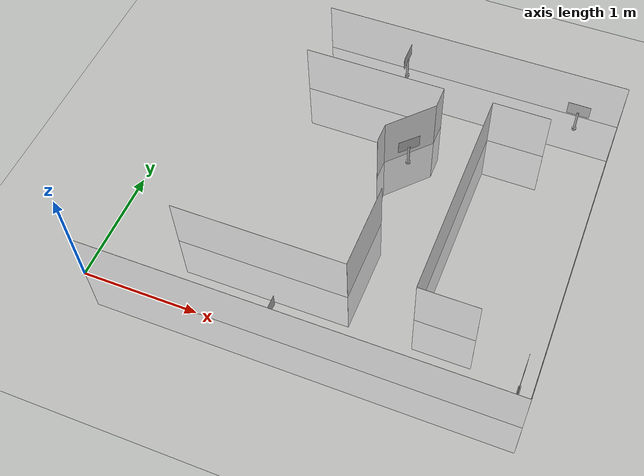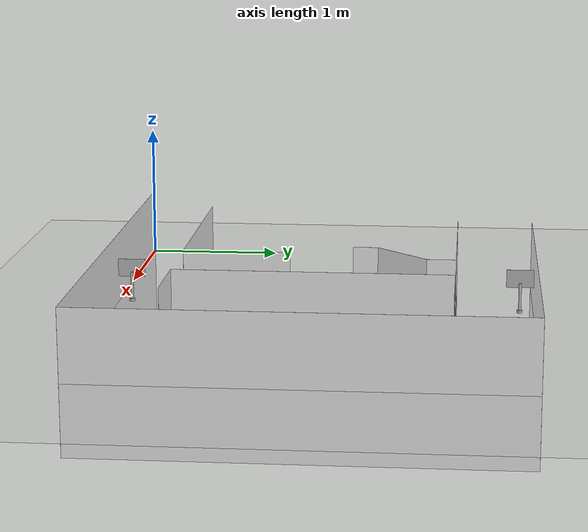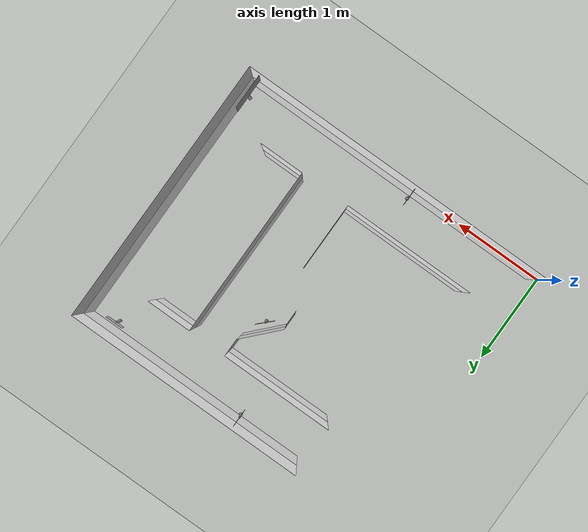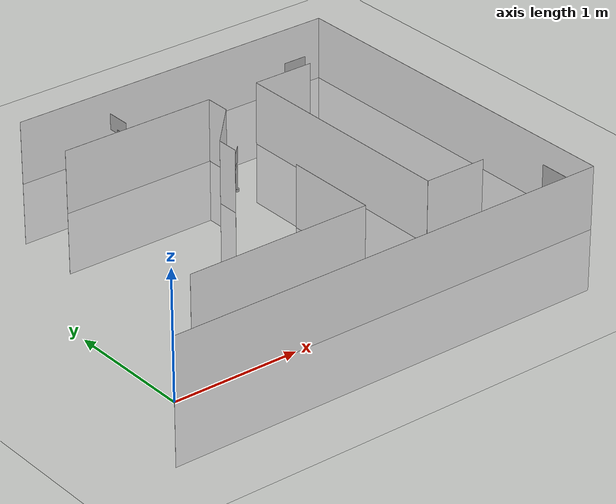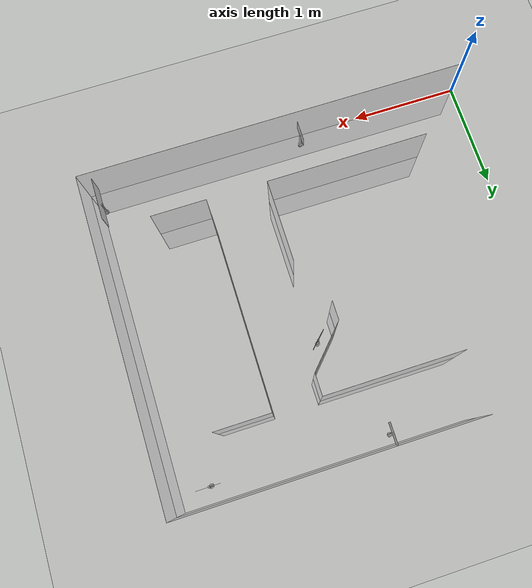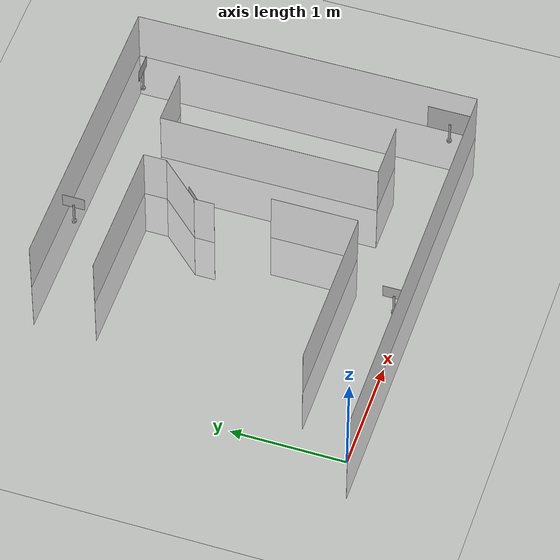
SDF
<sdf version="1.6">
 <world name="default">
  <model name="ground_plane">
   <static>1</static>
   <link name="link">
    <collision name="collision">
     <geometry><plane><normal>0 0 1</normal><size>100 100</size></plane></geometry>
     <surface><friction><ode><mu>100</mu><mu2>50</mu2></ode></friction></surface>
    </collision>
    <visual name="visual">
     <cast_shadows>0</cast_shadows>
     <geometry><plane><normal>0 0 1</normal><size>100 100</size></plane></geometry>
     <material>
      <script><uri>file://media/materials/scripts/gazebo.material</uri><name>Gazebo/Grey</name></script>
     </material>
    </visual>
   </link>
  </model>
  <model name="wall_6">
   <static>1</static>
   <link name="link">
    <collision name="collision"><geometry><box><size>2.74320548641 0.001 1</size></box></geometry></collision>
    <visual name="visual">
     <geometry><box><size>2.74320548641 0.001 1</size></box></geometry>
     <material>
      <script><name>Gazebo/White</name><uri>file://media/materials/scripts/gazebo.material</uri></script>
     </material>
    </visual>
   </link>
   <pose>2.28600457201 3.04800609601 0 0 0 0.0</pose>
  </model>
  <model name="wall_7">
   <static>1</static>
   <link name="link">
    <collision name="collision"><geometry><box><size>3.04800609601 0.001 1</size></box></geometry></collision>
    <visual name="visual">
     <geometry><box><size>3.04800609601 0.001 1</size></box></geometry>
     <material>
      <script><name>Gazebo/White</name><uri>file://media/materials/scripts/gazebo.material</uri></script>
     </material>
    </visual>
   </link>
   <pose>3.65760731521 1.52400304801 0 0 0 -1.57079632679</pose>
  </model>
  <model name="wall_8">
   <static>1</static>
   <link name="link">
    <collision name="collision"><geometry><box><size>3.65760731521 0.001 1</size></box></geometry></collision>
    <visual name="visual">
     <geometry><box><size>3.65760731521 0.001 1</size></box></geometry>
     <material>
      <script><name>Gazebo/White</name><uri>file://media/materials/scripts/gazebo.material</uri></script>
     </material>
    </visual>
   </link>
   <pose>1.82880365761 0.0 0 0 0 3.14159265359</pose>
  </model>
  <model name="wall_11">
   <static>1</static>
   <link name="link">
    <collision name="collision"><geometry><box><size>0.762001524003 0.001 1</size></box></geometry></collision>
    <visual name="visual">
     <geometry><box><size>0.762001524003 0.001 1</size></box></geometry>
     <material>
      <script><name>Gazebo/White</name><uri>file://media/materials/scripts/gazebo.material</uri></script>
     </material>
    </visual>
   </link>
   <pose>2.05740411481 0.939801879604 0 0 0 -1.57079632679</pose>
  </model>
  <model name="wall_12">
   <static>1</static>
   <link name="link">
    <collision name="collision"><geometry><box><size>1.49860299721 0.001 1</size></box></geometry></collision>
    <visual name="visual">
     <geometry><box><size>1.49860299721 0.001 1</size></box></geometry>
     <material>
      <script><name>Gazebo/White</name><uri>file://media/materials/scripts/gazebo.material</uri></script>
     </material>
    </visual>
   </link>
   <pose>1.30810261621 0.558801117602 0 0 0 3.14159265359</pose>
  </model>
  <model name="wall_19">
   <static>1</static>
   <link name="link">
    <collision name="collision"><geometry><box><size>1.27000254001 0.001 1</size></box></geometry></collision>
    <visual name="visual">
     <geometry><box><size>1.27000254001 0.001 1</size></box></geometry>
     <material>
      <script><name>Gazebo/White</name><uri>file://media/materials/scripts/gazebo.material</uri></script>
     </material>
    </visual>
   </link>
   <pose>1.54940309881 2.48920497841 0 0 0 0.0</pose>
  </model>
  <model name="wall_20">
   <static>1</static>
   <link name="link">
    <collision name="collision"><geometry><box><size>0.203200406401 0.001 1</size></box></geometry></collision>
    <visual name="visual">
     <geometry><box><size>0.203200406401 0.001 1</size></box></geometry>
     <material>
      <script><name>Gazebo/White</name><uri>file://media/materials/scripts/gazebo.material</uri></script>
     </material>
    </visual>
   </link>
   <pose>2.18440436881 2.38760477521 0 0 0 -1.57079632679</pose>
  </model>
  <model name="wall_21">
   <static>1</static>
   <link name="link">
    <collision name="collision"><geometry><box><size>0.485267289168 0.001 1</size></box></geometry></collision>
    <visual name="visual">
     <geometry><box><size>0.485267289168 0.001 1</size></box></geometry>
     <material>
      <script><name>Gazebo/White</name><uri>file://media/materials/scripts/gazebo.material</uri></script>
     </material>
    </visual>
   </link>
   <pose>2.01930403861 2.10820421641 0 0 0 -2.31917437432</pose>
  </model>
  <model name="wall_22">
   <static>1</static>
   <link name="link">
    <collision name="collision"><geometry><box><size>0.177800355601 0.001 1</size></box></geometry></collision>
    <visual name="visual">
     <geometry><box><size>0.177800355601 0.001 1</size></box></geometry>
     <material>
      <script><name>Gazebo/White</name><uri>file://media/materials/scripts/gazebo.material</uri></script>
     </material>
    </visual>
   </link>
   <pose>1.85420370841 1.84150368301 0 0 0 -1.57079632679</pose>
  </model>
  <model name="wall_24">
   <static>1</static>
   <link name="link">
    <collision name="collision"><geometry><box><size>0.508001016002 0.001 1</size></box></geometry></collision>
    <visual name="visual">
     <geometry><box><size>0.508001016002 0.001 1</size></box></geometry>
     <material>
      <script><name>Gazebo/White</name><uri>file://media/materials/scripts/gazebo.material</uri></script>
     </material>
    </visual>
   </link>
   <pose>2.87020574041 2.48920497841 0 0 0 0.0</pose>
  </model>
  <model name="wall_25">
   <static>1</static>
   <link name="link">
    <collision name="collision"><geometry><box><size>0.508001016002 0.001 1</size></box></geometry></collision>
    <visual name="visual">
     <geometry><box><size>0.508001016002 0.001 1</size></box></geometry>
     <material>
      <script><name>Gazebo/White</name><uri>file://media/materials/scripts/gazebo.material</uri></script>
     </material>
    </visual>
   </link>
   <pose>2.87020574041 0.558801117602 0 0 0 3.14159265359</pose>
  </model>
  <model name="wall_26">
   <static>1</static>
   <link name="link">
    <collision name="collision"><geometry><box><size>1.93040386081 0.001 1</size></box></geometry></collision>
    <visual name="visual">
     <geometry><box><size>1.93040386081 0.001 1</size></box></geometry>
     <material>
      <script><name>Gazebo/White</name><uri>file://media/materials/scripts/gazebo.material</uri></script>
     </material>
    </visual>
   </link>
   <pose>2.61620523241 1.52400304801 0 0 0 1.57079632679</pose>
  </model>
  <model name="Vendor1">
   <link name="plate">
    <pose>0 0 0.2425 0 0 0</pose>
    <collision name="collision">
     <geometry><box><size>0.001 0.1 0.065</size></box></geometry>
     <surface><friction><ode><mu>1</mu><mu2>1</mu2></ode></friction></surface>
    </collision>
    <visual name="visual">
     <geometry><box><size>0.001 0.2 0.13</size></box></geometry>
     <material>
      <script>
       <uri>model://vendor1/materials/scripts</uri>
       <uri>model://vendor1/materials/textures</uri>
       <name>Vendor1/Diffuse</name>
      </script>
     </material>
    </visual>
    <inertial>
     <inertia><ixx>0.1</ixx><ixy>0</ixy><ixz>0</ixz><iyy>0.1</iyy><iyz>0</iyz><izz>0.1</izz></inertia>
     <mass>0.1</mass>
    </inertial>
   </link>
   <link name="pole">
    <pose>0 0 0.11 0 0 0</pose>
    <collision name="collision">
     <geometry><cylinder><radius>0.01</radius><length>0.2</length></cylinder></geometry>
     <surface>
      <friction><torsional><coefficient>1</coefficient></torsional><ode><mu>1</mu><mu2>1</mu2></ode></friction>
     </surface>
    </collision>
    <visual name="visual">
     <geometry><cylinder><radius>0.01</radius><length>0.2</length></cylinder></geometry>
    </visual>
    <inertial>
     <inertia><ixx>1</ixx><ixy>0</ixy><ixz>0</ixz><iyy>1</iyy><iyz>0</iyz><izz>1</izz></inertia>
     <mass>1</mass>
    </inertial>
   </link>
   <link name="base">
    <collision name="collision">
     <geometry><cylinder><radius>0.02</radius><length>0.02</length></cylinder></geometry>
     <surface><friction><ode><mu>0.01</mu><mu2>0.01</mu2></ode></friction></surface>
    </collision>
    <visual name="visual">
     <geometry><cylinder><radius>0.02</radius><length>0.02</length></cylinder></geometry>
    </visual>
    <inertial>
     <inertia><ixx>0.1</ixx><ixy>0</ixy><ixz>0</ixz><iyy>0.1</iyy><iyz>0</iyz><izz>0.1</izz></inertia>
     <mass>0.1</mass>
    </inertial>
    <gravity>0</gravity>
   </link>
   <joint name="base_pole" type="fixed">
    <parent>base</parent>
    <child>pole</child>
    <pose>0 0 0.02 0 0 0</pose>
   </joint>
   <joint name="pole_plate" type="fixed">
    <parent>pole</parent>
    <child>plate</child>
    <pose>0 0 0.1 0 0 0</pose>
   </joint>
   <pose>1.6 0.1 0.01 0.0 0.0 3.14159</pose>
  </model>
  <model name="Vendor2">
   <link name="plate">
    <pose>0 0 0.2425 0 0 0</pose>
    <collision name="collision">
     <geometry><box><size>0.001 0.1 0.065</size></box></geometry>
     <surface><friction><ode><mu>1</mu><mu2>1</mu2></ode></friction></surface>
    </collision>
    <visual name="visual">
     <geometry><box><size>0.001 0.2 0.13</size></box></geometry>
     <material>
      <script>
       <uri>model://vendor2/materials/scripts</uri>
       <uri>model://vendor2/materials/textures</uri>
       <name>Vendor2/Diffuse</name>
      </script>
     </material>
    </visual>
    <inertial>
     <inertia><ixx>0.1</ixx><ixy>0</ixy><ixz>0</ixz><iyy>0.1</iyy><iyz>0</iyz><izz>0.1</izz></inertia>
     <mass>0.1</mass>
    </inertial>
   </link>
   <link name="pole">
    <pose>0 0 0.11 0 0 0</pose>
    <collision name="collision">
     <geometry><cylinder><radius>0.01</radius><length>0.2</length></cylinder></geometry>
     <surface>
      <friction><torsional><coefficient>1</coefficient></torsional><ode><mu>1</mu><mu2>1</mu2></ode></friction>
     </surface>
    </collision>
    <visual name="visual">
     <geometry><cylinder><radius>0.01</radius><length>0.2</length></cylinder></geometry>
    </visual>
    <inertial>
     <inertia><ixx>1</ixx><ixy>0</ixy><ixz>0</ixz><iyy>1</iyy><iyz>0</iyz><izz>1</izz></inertia>
     <mass>1</mass>
    </inertial>
   </link>
   <link name="base">
    <collision name="collision">
     <geometry><cylinder><radius>0.02</radius><length>0.02</length></cylinder></geometry>
     <surface><friction><ode><mu>0.01</mu><mu2>0.01</mu2></ode></friction></surface>
    </collision>
    <visual name="visual">
     <geometry><cylinder><radius>0.02</radius><length>0.02</length></cylinder></geometry>
    </visual>
    <inertial>
     <inertia><ixx>0.1</ixx><ixy>0</ixy><ixz>0</ixz><iyy>0.1</iyy><iyz>0</iyz><izz>0.1</izz></inertia>
     <mass>0.1</mass>
    </inertial>
    <gravity>0</gravity>
   </link>
   <joint name="base_pole" type="fixed">
    <parent>base</parent>
    <child>pole</child>
    <pose>0 0 0.02 0 0 0</pose>
   </joint>
   <joint name="pole_plate" type="fixed">
    <parent>pole</parent>
    <child>plate</child>
    <pose>0 0 0.1 0 0 0</pose>
   </joint>
   <pose>1.7 2.95  0.01 0.0 0.0 3.1415</pose>
  </model>
  <model name="Vendor3">
   <link name="plate">
    <pose>0 0 0.2425 0 0 0</pose>
    <collision name="collision">
     <geometry><box><size>0.001 0.1 0.065</size></box></geometry>
     <surface><friction><ode><mu>1</mu><mu2>1</mu2></ode></friction></surface>
    </collision>
    <visual name="visual">
     <geometry><box><size>0.001 0.2 0.13</size></box></geometry>
     <material>
      <script>
       <uri>model://vendor3/materials/scripts</uri>
       <uri>model://vendor3/materials/textures</uri>
       <name>Vendor3/Diffuse</name>
      </script>
     </material>
    </visual>
    <inertial>
     <inertia><ixx>0.1</ixx><ixy>0</ixy><ixz>0</ixz><iyy>0.1</iyy><iyz>0</iyz><izz>0.1</izz></inertia>
     <mass>0.1</mass>
    </inertial>
   </link>
   <link name="pole">
    <pose>0 0 0.11 0 0 0</pose>
    <collision name="collision">
     <geometry><cylinder><radius>0.01</radius><length>0.2</length></cylinder></geometry>
     <surface>
      <friction><torsional><coefficient>1</coefficient></torsional><ode><mu>1</mu><mu2>1</mu2></ode></friction>
     </surface>
    </collision>
    <visual name="visual">
     <geometry><cylinder><radius>0.01</radius><length>0.2</length></cylinder></geometry>
    </visual>
    <inertial>
     <inertia><ixx>1</ixx><ixy>0</ixy><ixz>0</ixz><iyy>1</iyy><iyz>0</iyz><izz>1</izz></inertia>
     <mass>1</mass>
    </inertial>
   </link>
   <link name="base">
    <collision name="collision">
     <geometry><cylinder><radius>0.02</radius><length>0.02</length></cylinder></geometry>
     <surface><friction><ode><mu>0.01</mu><mu2>0.01</mu2></ode></friction></surface>
    </collision>
    <visual name="visual">
     <geometry><cylinder><radius>0.02</radius><length>0.02</length></cylinder></geometry>
    </visual>
    <inertial>
     <inertia><ixx>0.1</ixx><ixy>0</ixy><ixz>0</ixz><iyy>0.1</iyy><iyz>0</iyz><izz>0.1</izz></inertia>
     <mass>0.1</mass>
    </inertial>
    <gravity>0</gravity>
   </link>
   <joint name="base_pole" type="fixed">
    <parent>base</parent>
    <child>pole</child>
    <pose>0 0 0.02 0 0 0</pose>
   </joint>
   <joint name="pole_plate" type="fixed">
    <parent>pole</parent>
    <child>plate</child>
    <pose>0 0 0.1 0 0 0</pose>
   </joint>
   <pose>2.05 2.0 0.01 0.0 0.0 -0.785</pose>
  </model>
  <model name="Vendor5">
   <link name="plate">
    <pose>0 0 0.2425 0 0 0</pose>
    <collision name="collision">
     <geometry><box><size>0.001 0.1 0.065</size></box></geometry>
     <surface><friction><ode><mu>1</mu><mu2>1</mu2></ode></friction></surface>
    </collision>
    <visual name="visual">
     <geometry><box><size>0.001 0.2 0.13</size></box></geometry>
     <material>
      <script>
       <uri>model://vendor5/materials/scripts</uri>
       <uri>model://vendor5/materials/textures</uri>
       <name>Vendor5/Diffuse</name>
      </script>
     </material>
    </visual>
    <inertial>
     <inertia><ixx>0.1</ixx><ixy>0</ixy><ixz>0</ixz><iyy>0.1</iyy><iyz>0</iyz><izz>0.1</izz></inertia>
     <mass>0.1</mass>
    </inertial>
   </link>
   <link name="pole">
    <pose>0 0 0.11 0 0 0</pose>
    <collision name="collision">
     <geometry><cylinder><radius>0.01</radius><length>0.2</length></cylinder></geometry>
     <surface>
      <friction><torsional><coefficient>1</coefficient></torsional><ode><mu>1</mu><mu2>1</mu2></ode></friction>
     </surface>
    </collision>
    <visual name="visual">
     <geometry><cylinder><radius>0.01</radius><length>0.2</length></cylinder></geometry>
    </visual>
    <inertial>
     <inertia><ixx>1</ixx><ixy>0</ixy><ixz>0</ixz><iyy>1</iyy><iyz>0</iyz><izz>1</izz></inertia>
     <mass>1</mass>
    </inertial>
   </link>
   <link name="base">
    <collision name="collision">
     <geometry><cylinder><radius>0.02</radius><length>0.02</length></cylinder></geometry>
     <surface><friction><ode><mu>0.01</mu><mu2>0.01</mu2></ode></friction></surface>
    </collision>
    <visual name="visual">
     <geometry><cylinder><radius>0.02</radius><length>0.02</length></cylinder></geometry>
    </visual>
    <inertial>
     <inertia><ixx>0.1</ixx><ixy>0</ixy><ixz>0</ixz><iyy>0.1</iyy><iyz>0</iyz><izz>0.1</izz></inertia>
     <mass>0.1</mass>
    </inertial>
    <gravity>0</gravity>
   </link>
   <joint name="base_pole" type="fixed">
    <parent>base</parent>
    <child>pole</child>
    <pose>0 0 0.02 0 0 0</pose>
   </joint>
   <joint name="pole_plate" type="fixed">
    <parent>pole</parent>
    <child>plate</child>
    <pose>0 0 0.1 0 0 0</pose>
   </joint>
   <pose>3.3 2.89 0.01 0.0 0.0 1.57</pose>
  </model>
  <model name="Dog">
   <link name="plate">
    <pose>0 0 0.2425 0 0 0</pose>
    <collision name="collision">
     <geometry><box><size>0.001 0.1 0.065</size></box></geometry>
     <surface><friction><ode><mu>1</mu><mu2>1</mu2></ode></friction></surface>
    </collision>
    <visual name="visual">
     <geometry><box><size>0.001 0.4 0.26</size></box></geometry>
     <material>
      <script>
       <uri>model://dog/materials/scripts</uri>
       <uri>model://dog/materials/textures</uri>
       <name>dog/Diffuse</name>
      </script>
     </material>
    </visual>
    <inertial>
     <inertia><ixx>0.1</ixx><ixy>0</ixy><ixz>0</ixz><iyy>0.1</iyy><iyz>0</iyz><izz>0.1</izz></inertia>
     <mass>0.1</mass>
    </inertial>
   </link>
   <link name="pole">
    <pose>0 0 0.11 0 0 0</pose>
    <collision name="collision">
     <geometry><cylinder><radius>0.01</radius><length>0.2</length></cylinder></geometry>
     <surface>
      <friction><torsional><coefficient>1</coefficient></torsional><ode><mu>1</mu><mu2>1</mu2></ode></friction>
     </surface>
    </collision>
    <visual name="visual">
     <geometry><cylinder><radius>0.01</radius><length>0.2</length></cylinder></geometry>
    </visual>
    <inertial>
     <inertia><ixx>1</ixx><ixy>0</ixy><ixz>0</ixz><iyy>1</iyy><iyz>0</iyz><izz>1</izz></inertia>
     <mass>1</mass>
    </inertial>
   </link>
   <link name="base">
    <collision name="collision">
     <geometry><cylinder><radius>0.02</radius><length>0.02</length></cylinder></geometry>
     <surface><friction><ode><mu>0.01</mu><mu2>0.01</mu2></ode></friction></surface>
    </collision>
    <visual name="visual">
     <geometry><cylinder><radius>0.02</radius><length>0.02</length></cylinder></geometry>
    </visual>
    <inertial>
     <inertia><ixx>0.1</ixx><ixy>0</ixy><ixz>0</ixz><iyy>0.1</iyy><iyz>0</iyz><izz>0.1</izz></inertia>
     <mass>0.1</mass>
    </inertial>
    <gravity>0</gravity>
   </link>
   <joint name="base_pole" type="fixed">
    <parent>base</parent>
    <child>pole</child>
    <pose>0 0 0.02 0 0 0</pose>
   </joint>
   <joint name="pole_plate" type="fixed">
    <parent>pole</parent>
    <child>plate</child>
    <pose>0 0 0.1 0 0 0</pose>
   </joint>
   <pose>3.55 0.2 0.01 0.0 0.0 3.1415</pose>
  </model>
 </world>
</sdf>
